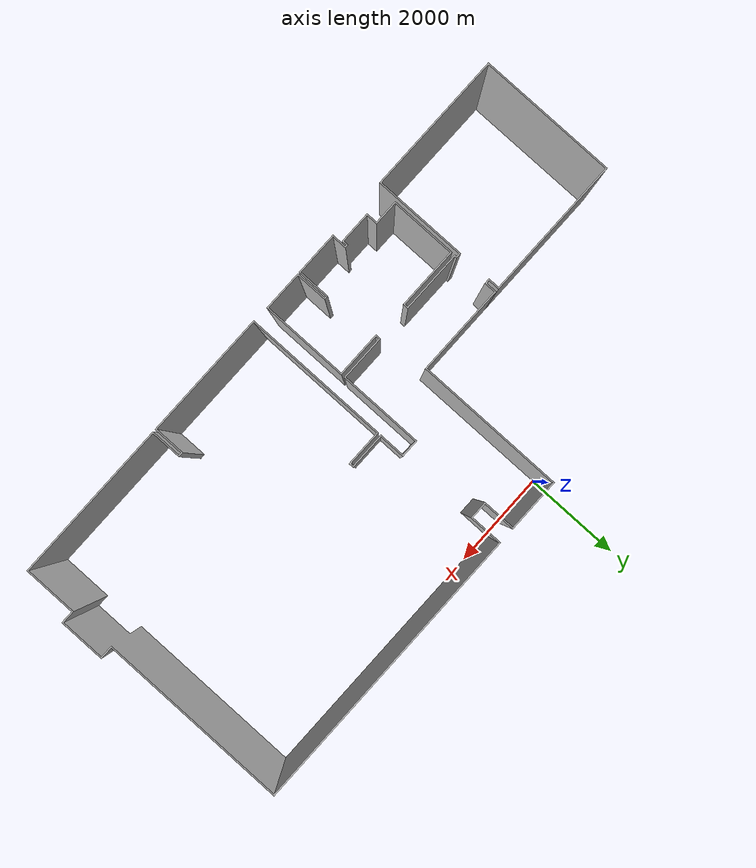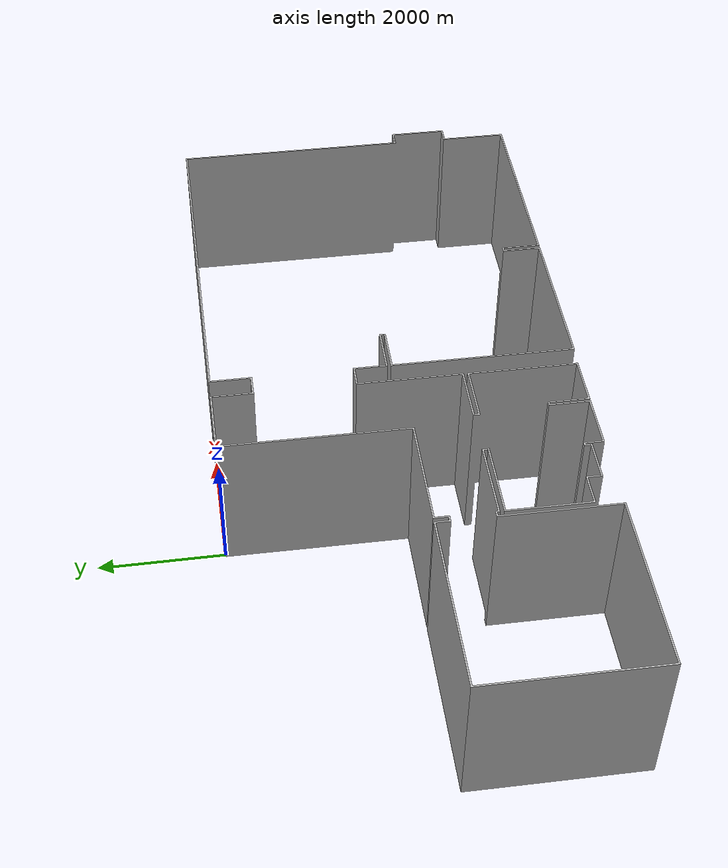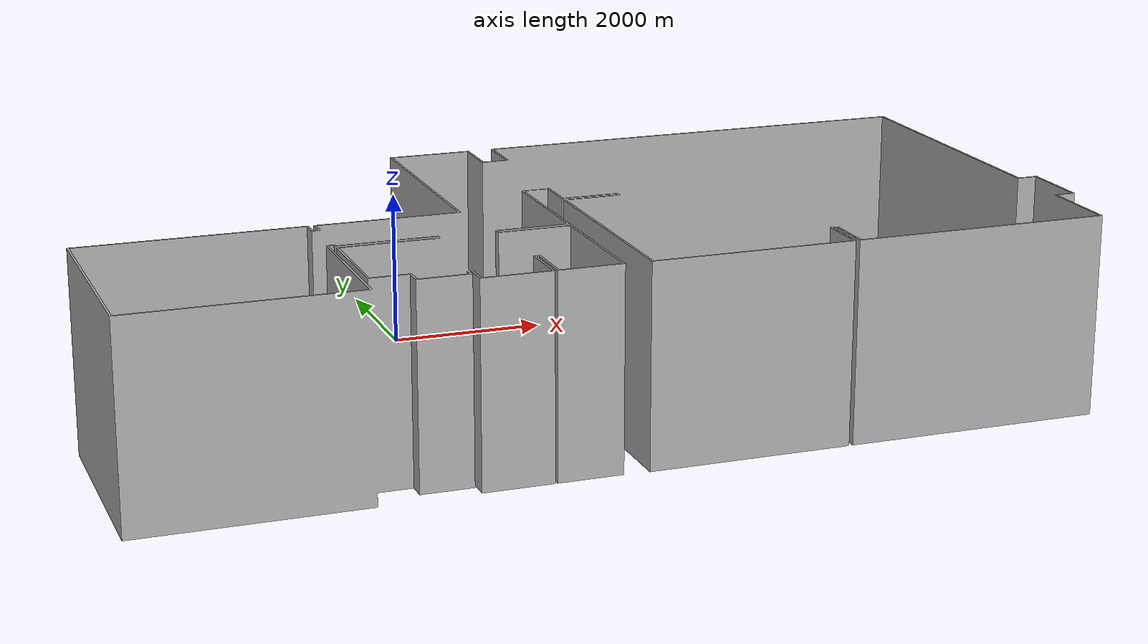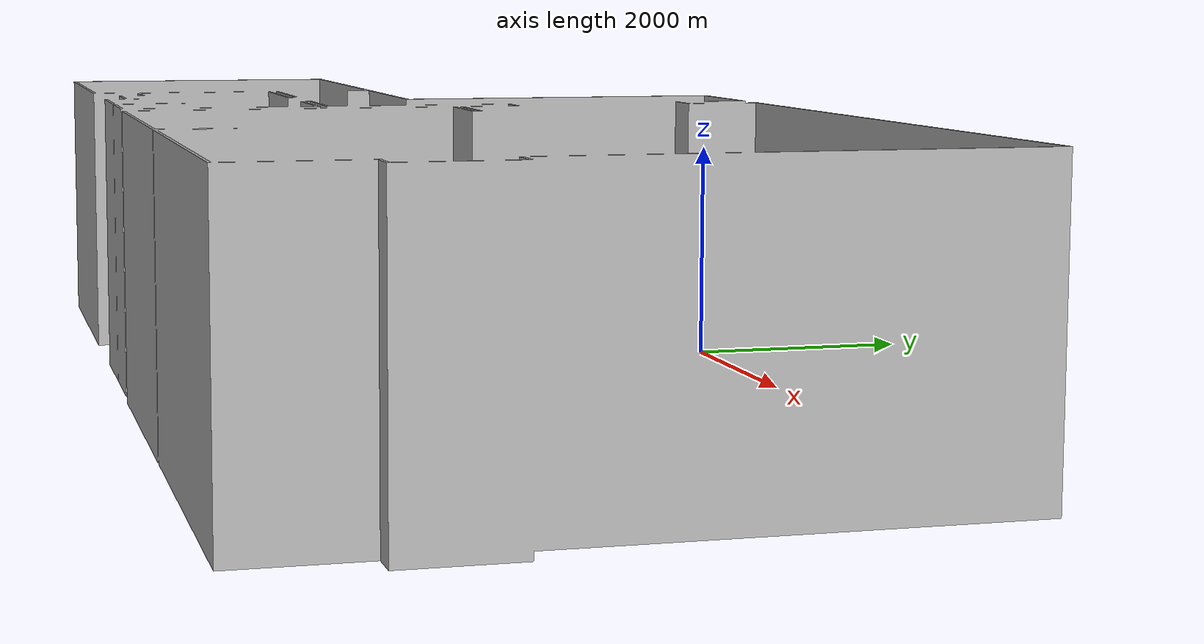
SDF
<?xml version="1.0" ?>
<sdf version="1.6">
  <model name="apartment_model">
    <static>true</static>
    <link name="link">
      <collision name="collision">
        <geometry>
          <mesh>
            <scale>1 1 1</scale>
            <uri>model://apartment_model/meshes/apartment_model.dae</uri>
          </mesh>
        </geometry>
      </collision>
      <visual name="visual">
        <geometry>
          <mesh>
            <scale>1 1 1</scale>
            <uri>model://apartment_model/meshes/apartment_model.dae</uri>
          </mesh>
        </geometry>
        <material>
          <script>
            <uri>model://apartment_model/materials/scripts</uri>
            <uri>model://apartment_model/materials/textures</uri>
            <name>apartment_wall</name>
          </script>
        </material>
      </visual>
    </link>
  </model>
</sdf>
